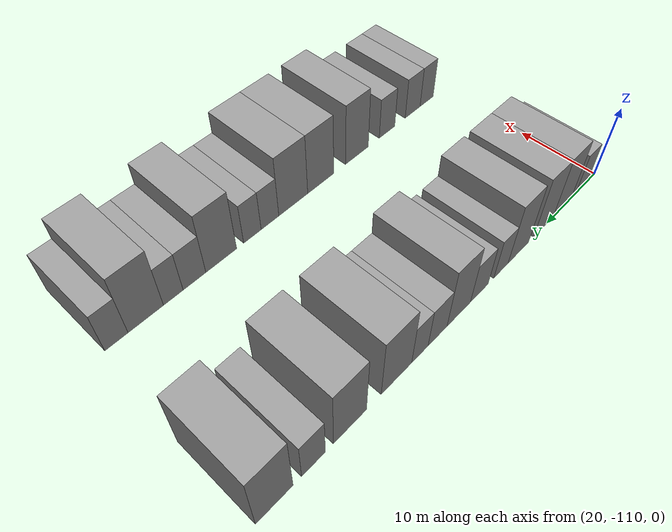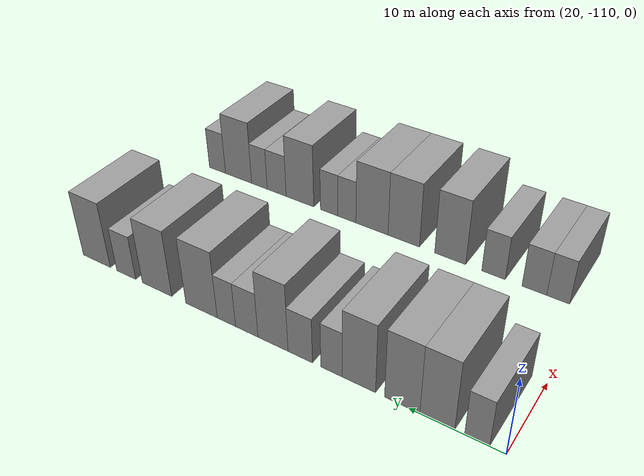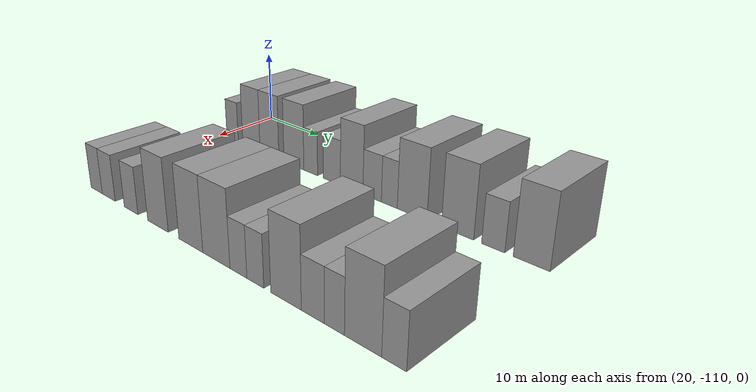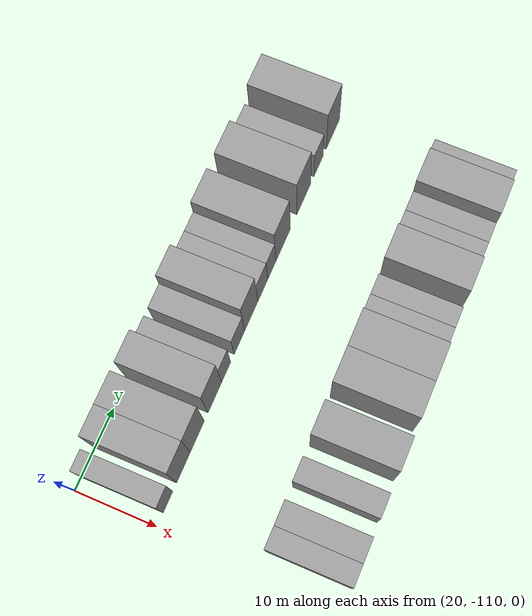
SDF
<sdf version="1.6">
 <world name="default">
  <model name="building_26">
   <static>1</static>
   <pose>25.0000 -107.1024 0 0.000000 0.000000 0.000000</pose>
   <link name="link">
    <pose>0 0 3.00 0 0 0</pose>
    <collision name="collision"><geometry><box><size>10.0000 2.5225 6.0000</size></box></geometry></collision>
    <visual name="visual">
     <cast_shadows>0</cast_shadows>
     <geometry><box><size>10.0000 2.5225 6.0000</size></box></geometry>
     <material>
      <script>
       <uri>model://grey_wall/materials/scripts</uri>
       <uri>model://grey_wall/materials/textures</uri>
       <name>vrc/grey_wall</name>
      </script>
     </material>
    </visual>
   </link>
  </model>
  <model name="building_27">
   <static>1</static>
   <pose>25.0000 -103.0135 0 0.000000 0.000000 0.000000</pose>
   <link name="link">
    <pose>0 0 4.50 0 0 0</pose>
    <collision name="collision"><geometry><box><size>10.0000 3.6551 9.0000</size></box></geometry></collision>
    <visual name="visual">
     <cast_shadows>0</cast_shadows>
     <geometry><box><size>10.0000 3.6551 9.0000</size></box></geometry>
     <material>
      <script>
       <uri>model://grey_wall/materials/scripts</uri>
       <uri>model://grey_wall/materials/textures</uri>
       <name>vrc/grey_wall</name>
      </script>
     </material>
    </visual>
   </link>
  </model>
  <model name="building_28">
   <static>1</static>
   <pose>25.0000 -99.2691 0 0.000000 0.000000 0.000000</pose>
   <link name="link">
    <pose>0 0 4.50 0 0 0</pose>
    <collision name="collision"><geometry><box><size>10.0000 3.8337 9.0000</size></box></geometry></collision>
    <visual name="visual">
     <cast_shadows>0</cast_shadows>
     <geometry><box><size>10.0000 3.8337 9.0000</size></box></geometry>
     <material>
      <script>
       <uri>model://grey_wall/materials/scripts</uri>
       <uri>model://grey_wall/materials/textures</uri>
       <name>vrc/grey_wall</name>
      </script>
     </material>
    </visual>
   </link>
  </model>
  <model name="building_29">
   <static>1</static>
   <pose>25.0000 -94.4503 0 0.000000 0.000000 0.000000</pose>
   <link name="link">
    <pose>0 0 4.50 0 0 0</pose>
    <collision name="collision"><geometry><box><size>10.0000 3.8038 9.0000</size></box></geometry></collision>
    <visual name="visual">
     <cast_shadows>0</cast_shadows>
     <geometry><box><size>10.0000 3.8038 9.0000</size></box></geometry>
     <material>
      <script>
       <uri>model://grey_wall/materials/scripts</uri>
       <uri>model://grey_wall/materials/textures</uri>
       <name>vrc/grey_wall</name>
      </script>
     </material>
    </visual>
   </link>
  </model>
  <model name="building_30">
   <static>1</static>
   <pose>25.0000 -91.2841 0 0.000000 0.000000 0.000000</pose>
   <link name="link">
    <pose>0 0 3.00 0 0 0</pose>
    <collision name="collision"><geometry><box><size>10.0000 2.5287 6.0000</size></box></geometry></collision>
    <visual name="visual">
     <cast_shadows>0</cast_shadows>
     <geometry><box><size>10.0000 2.5287 6.0000</size></box></geometry>
     <material>
      <script>
       <uri>model://grey_wall/materials/scripts</uri>
       <uri>model://grey_wall/materials/textures</uri>
       <name>vrc/grey_wall</name>
      </script>
     </material>
    </visual>
   </link>
  </model>
  <model name="building_31">
   <static>1</static>
   <pose>25.0000 -87.5224 0 0.000000 0.000000 0.000000</pose>
   <link name="link">
    <pose>0 0 3.00 0 0 0</pose>
    <collision name="collision"><geometry><box><size>10.0000 2.9947 6.0000</size></box></geometry></collision>
    <visual name="visual">
     <cast_shadows>0</cast_shadows>
     <geometry><box><size>10.0000 2.9947 6.0000</size></box></geometry>
     <material>
      <script>
       <uri>model://grey_wall/materials/scripts</uri>
       <uri>model://grey_wall/materials/textures</uri>
       <name>vrc/grey_wall</name>
      </script>
     </material>
    </visual>
   </link>
  </model>
  <model name="building_32">
   <static>1</static>
   <pose>25.0000 -84.1280 0 0.000000 0.000000 0.000000</pose>
   <link name="link">
    <pose>0 0 4.50 0 0 0</pose>
    <collision name="collision"><geometry><box><size>10.0000 3.7940 9.0000</size></box></geometry></collision>
    <visual name="visual">
     <cast_shadows>0</cast_shadows>
     <geometry><box><size>10.0000 3.7940 9.0000</size></box></geometry>
     <material>
      <script>
       <uri>model://grey_wall/materials/scripts</uri>
       <uri>model://grey_wall/materials/textures</uri>
       <name>vrc/grey_wall</name>
      </script>
     </material>
    </visual>
   </link>
  </model>
  <model name="building_33">
   <static>1</static>
   <pose>25.0000 -80.7663 0 0.000000 0.000000 0.000000</pose>
   <link name="link">
    <pose>0 0 3.00 0 0 0</pose>
    <collision name="collision"><geometry><box><size>10.0000 2.9295 6.0000</size></box></geometry></collision>
    <visual name="visual">
     <cast_shadows>0</cast_shadows>
     <geometry><box><size>10.0000 2.9295 6.0000</size></box></geometry>
     <material>
      <script>
       <uri>model://grey_wall/materials/scripts</uri>
       <uri>model://grey_wall/materials/textures</uri>
       <name>vrc/grey_wall</name>
      </script>
     </material>
    </visual>
   </link>
  </model>
  <model name="building_34">
   <static>1</static>
   <pose>25.0000 -78.0802 0 0.000000 0.000000 0.000000</pose>
   <link name="link">
    <pose>0 0 3.00 0 0 0</pose>
    <collision name="collision"><geometry><box><size>10.0000 2.4427 6.0000</size></box></geometry></collision>
    <visual name="visual">
     <cast_shadows>0</cast_shadows>
     <geometry><box><size>10.0000 2.4427 6.0000</size></box></geometry>
     <material>
      <script>
       <uri>model://grey_wall/materials/scripts</uri>
       <uri>model://grey_wall/materials/textures</uri>
       <name>vrc/grey_wall</name>
      </script>
     </material>
    </visual>
   </link>
  </model>
  <model name="building_35">
   <static>1</static>
   <pose>25.0000 -74.6875 0 0.000000 0.000000 0.000000</pose>
   <link name="link">
    <pose>0 0 4.50 0 0 0</pose>
    <collision name="collision"><geometry><box><size>10.0000 4.3428 9.0000</size></box></geometry></collision>
    <visual name="visual">
     <cast_shadows>0</cast_shadows>
     <geometry><box><size>10.0000 4.3428 9.0000</size></box></geometry>
     <material>
      <script>
       <uri>model://grey_wall/materials/scripts</uri>
       <uri>model://grey_wall/materials/textures</uri>
       <name>vrc/grey_wall</name>
      </script>
     </material>
    </visual>
   </link>
  </model>
  <model name="building_36">
   <static>1</static>
   <pose>25.0000 -68.3680 0 0.000000 0.000000 0.000000</pose>
   <link name="link">
    <pose>0 0 4.50 0 0 0</pose>
    <collision name="collision"><geometry><box><size>10.0000 4.2962 9.0000</size></box></geometry></collision>
    <visual name="visual">
     <cast_shadows>0</cast_shadows>
     <geometry><box><size>10.0000 4.2962 9.0000</size></box></geometry>
     <material>
      <script>
       <uri>model://grey_wall/materials/scripts</uri>
       <uri>model://grey_wall/materials/textures</uri>
       <name>vrc/grey_wall</name>
      </script>
     </material>
    </visual>
   </link>
  </model>
  <model name="building_37">
   <static>1</static>
   <pose>25.0000 -63.7823 0 0.000000 0.000000 0.000000</pose>
   <link name="link">
    <pose>0 0 3.00 0 0 0</pose>
    <collision name="collision"><geometry><box><size>10.0000 2.8752 6.0000</size></box></geometry></collision>
    <visual name="visual">
     <cast_shadows>0</cast_shadows>
     <geometry><box><size>10.0000 2.8752 6.0000</size></box></geometry>
     <material>
      <script>
       <uri>model://grey_wall/materials/scripts</uri>
       <uri>model://grey_wall/materials/textures</uri>
       <name>vrc/grey_wall</name>
      </script>
     </material>
    </visual>
   </link>
  </model>
  <model name="building_38">
   <static>1</static>
   <pose>25.0000 -59.2195 0 0.000000 0.000000 0.000000</pose>
   <link name="link">
    <pose>0 0 4.50 0 0 0</pose>
    <collision name="collision"><geometry><box><size>10.0000 4.2504 9.0000</size></box></geometry></collision>
    <visual name="visual">
     <cast_shadows>0</cast_shadows>
     <geometry><box><size>10.0000 4.2504 9.0000</size></box></geometry>
     <material>
      <script>
       <uri>model://grey_wall/materials/scripts</uri>
       <uri>model://grey_wall/materials/textures</uri>
       <name>vrc/grey_wall</name>
      </script>
     </material>
    </visual>
   </link>
  </model>
  <model name="building_132">
   <static>1</static>
   <pose>47.0000 -106.5050 0 0.000000 0.000000 0.000000</pose>
   <link name="link">
    <pose>0 0 3.00 0 0 0</pose>
    <collision name="collision"><geometry><box><size>10.0000 2.6301 6.0000</size></box></geometry></collision>
    <visual name="visual">
     <cast_shadows>0</cast_shadows>
     <geometry><box><size>10.0000 2.6301 6.0000</size></box></geometry>
     <material>
      <script>
       <uri>model://grey_wall/materials/scripts</uri>
       <uri>model://grey_wall/materials/textures</uri>
       <name>vrc/grey_wall</name>
      </script>
     </material>
    </visual>
   </link>
  </model>
  <model name="building_133">
   <static>1</static>
   <pose>47.0000 -103.7372 0 0.000000 0.000000 0.000000</pose>
   <link name="link">
    <pose>0 0 3.00 0 0 0</pose>
    <collision name="collision"><geometry><box><size>10.0000 2.9054 6.0000</size></box></geometry></collision>
    <visual name="visual">
     <cast_shadows>0</cast_shadows>
     <geometry><box><size>10.0000 2.9054 6.0000</size></box></geometry>
     <material>
      <script>
       <uri>model://grey_wall/materials/scripts</uri>
       <uri>model://grey_wall/materials/textures</uri>
       <name>vrc/grey_wall</name>
      </script>
     </material>
    </visual>
   </link>
  </model>
  <model name="building_134">
   <static>1</static>
   <pose>47.0000 -98.8450 0 0.000000 0.000000 0.000000</pose>
   <link name="link">
    <pose>0 0 3.00 0 0 0</pose>
    <collision name="collision"><geometry><box><size>10.0000 2.8790 6.0000</size></box></geometry></collision>
    <visual name="visual">
     <cast_shadows>0</cast_shadows>
     <geometry><box><size>10.0000 2.8790 6.0000</size></box></geometry>
     <material>
      <script>
       <uri>model://grey_wall/materials/scripts</uri>
       <uri>model://grey_wall/materials/textures</uri>
       <name>vrc/grey_wall</name>
      </script>
     </material>
    </visual>
   </link>
  </model>
  <model name="building_135">
   <static>1</static>
   <pose>47.0000 -93.4130 0 0.000000 0.000000 0.000000</pose>
   <link name="link">
    <pose>0 0 4.50 0 0 0</pose>
    <collision name="collision"><geometry><box><size>10.0000 3.9851 9.0000</size></box></geometry></collision>
    <visual name="visual">
     <cast_shadows>0</cast_shadows>
     <geometry><box><size>10.0000 3.9851 9.0000</size></box></geometry>
     <material>
      <script>
       <uri>model://grey_wall/materials/scripts</uri>
       <uri>model://grey_wall/materials/textures</uri>
       <name>vrc/grey_wall</name>
      </script>
     </material>
    </visual>
   </link>
  </model>
  <model name="building_136">
   <static>1</static>
   <pose>47.0000 -87.2961 0 0.000000 0.000000 0.000000</pose>
   <link name="link">
    <pose>0 0 4.50 0 0 0</pose>
    <collision name="collision"><geometry><box><size>10.0000 4.2486 9.0000</size></box></geometry></collision>
    <visual name="visual">
     <cast_shadows>0</cast_shadows>
     <geometry><box><size>10.0000 4.2486 9.0000</size></box></geometry>
     <material>
      <script>
       <uri>model://grey_wall/materials/scripts</uri>
       <uri>model://grey_wall/materials/textures</uri>
       <name>vrc/grey_wall</name>
      </script>
     </material>
    </visual>
   </link>
  </model>
  <model name="building_137">
   <static>1</static>
   <pose>47.0000 -82.9281 0 0.000000 0.000000 0.000000</pose>
   <link name="link">
    <pose>0 0 4.50 0 0 0</pose>
    <collision name="collision"><geometry><box><size>10.0000 4.4875 9.0000</size></box></geometry></collision>
    <visual name="visual">
     <cast_shadows>0</cast_shadows>
     <geometry><box><size>10.0000 4.4875 9.0000</size></box></geometry>
     <material>
      <script>
       <uri>model://grey_wall/materials/scripts</uri>
       <uri>model://grey_wall/materials/textures</uri>
       <name>vrc/grey_wall</name>
      </script>
     </material>
    </visual>
   </link>
  </model>
  <model name="building_138">
   <static>1</static>
   <pose>47.0000 -79.3712 0 0.000000 0.000000 0.000000</pose>
   <link name="link">
    <pose>0 0 3.00 0 0 0</pose>
    <collision name="collision"><geometry><box><size>10.0000 2.6264 6.0000</size></box></geometry></collision>
    <visual name="visual">
     <cast_shadows>0</cast_shadows>
     <geometry><box><size>10.0000 2.6264 6.0000</size></box></geometry>
     <material>
      <script>
       <uri>model://grey_wall/materials/scripts</uri>
       <uri>model://grey_wall/materials/textures</uri>
       <name>vrc/grey_wall</name>
      </script>
     </material>
    </visual>
   </link>
  </model>
  <model name="building_139">
   <static>1</static>
   <pose>47.0000 -76.7967 0 0.000000 0.000000 0.000000</pose>
   <link name="link">
    <pose>0 0 3.00 0 0 0</pose>
    <collision name="collision"><geometry><box><size>10.0000 2.5224 6.0000</size></box></geometry></collision>
    <visual name="visual">
     <cast_shadows>0</cast_shadows>
     <geometry><box><size>10.0000 2.5224 6.0000</size></box></geometry>
     <material>
      <script>
       <uri>model://grey_wall/materials/scripts</uri>
       <uri>model://grey_wall/materials/textures</uri>
       <name>vrc/grey_wall</name>
      </script>
     </material>
    </visual>
   </link>
  </model>
  <model name="building_140">
   <static>1</static>
   <pose>47.0000 -72.4310 0 0.000000 0.000000 0.000000</pose>
   <link name="link">
    <pose>0 0 4.50 0 0 0</pose>
    <collision name="collision"><geometry><box><size>10.0000 4.2090 9.0000</size></box></geometry></collision>
    <visual name="visual">
     <cast_shadows>0</cast_shadows>
     <geometry><box><size>10.0000 4.2090 9.0000</size></box></geometry>
     <material>
      <script>
       <uri>model://grey_wall/materials/scripts</uri>
       <uri>model://grey_wall/materials/textures</uri>
       <name>vrc/grey_wall</name>
      </script>
     </material>
    </visual>
   </link>
  </model>
  <model name="building_141">
   <static>1</static>
   <pose>47.0000 -68.8435 0 0.000000 0.000000 0.000000</pose>
   <link name="link">
    <pose>0 0 3.00 0 0 0</pose>
    <collision name="collision"><geometry><box><size>10.0000 2.9662 6.0000</size></box></geometry></collision>
    <visual name="visual">
     <cast_shadows>0</cast_shadows>
     <geometry><box><size>10.0000 2.9662 6.0000</size></box></geometry>
     <material>
      <script>
       <uri>model://grey_wall/materials/scripts</uri>
       <uri>model://grey_wall/materials/textures</uri>
       <name>vrc/grey_wall</name>
      </script>
     </material>
    </visual>
   </link>
  </model>
  <model name="building_142">
   <static>1</static>
   <pose>47.0000 -66.1214 0 0.000000 0.000000 0.000000</pose>
   <link name="link">
    <pose>0 0 3.00 0 0 0</pose>
    <collision name="collision"><geometry><box><size>10.0000 2.4778 6.0000</size></box></geometry></collision>
    <visual name="visual">
     <cast_shadows>0</cast_shadows>
     <geometry><box><size>10.0000 2.4778 6.0000</size></box></geometry>
     <material>
      <script>
       <uri>model://grey_wall/materials/scripts</uri>
       <uri>model://grey_wall/materials/textures</uri>
       <name>vrc/grey_wall</name>
      </script>
     </material>
    </visual>
   </link>
  </model>
  <model name="building_143">
   <static>1</static>
   <pose>47.0000 -62.7457 0 0.000000 0.000000 0.000000</pose>
   <link name="link">
    <pose>0 0 4.50 0 0 0</pose>
    <collision name="collision"><geometry><box><size>10.0000 4.2736 9.0000</size></box></geometry></collision>
    <visual name="visual">
     <cast_shadows>0</cast_shadows>
     <geometry><box><size>10.0000 4.2736 9.0000</size></box></geometry>
     <material>
      <script>
       <uri>model://grey_wall/materials/scripts</uri>
       <uri>model://grey_wall/materials/textures</uri>
       <name>vrc/grey_wall</name>
      </script>
     </material>
    </visual>
   </link>
  </model>
  <model name="building_144">
   <static>1</static>
   <pose>47.0000 -59.2666 0 0.000000 0.000000 0.000000</pose>
   <link name="link">
    <pose>0 0 3.00 0 0 0</pose>
    <collision name="collision"><geometry><box><size>10.0000 2.6847 6.0000</size></box></geometry></collision>
    <visual name="visual">
     <cast_shadows>0</cast_shadows>
     <geometry><box><size>10.0000 2.6847 6.0000</size></box></geometry>
     <material>
      <script>
       <uri>model://grey_wall/materials/scripts</uri>
       <uri>model://grey_wall/materials/textures</uri>
       <name>vrc/grey_wall</name>
      </script>
     </material>
    </visual>
   </link>
  </model>
 </world>
</sdf>
